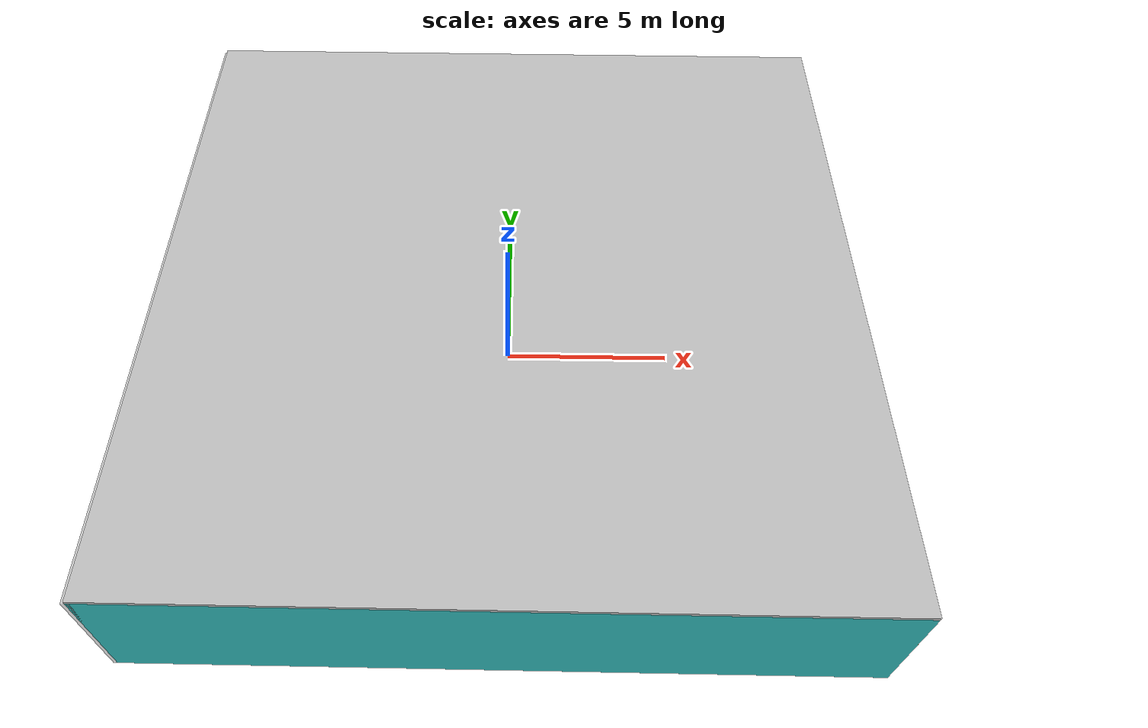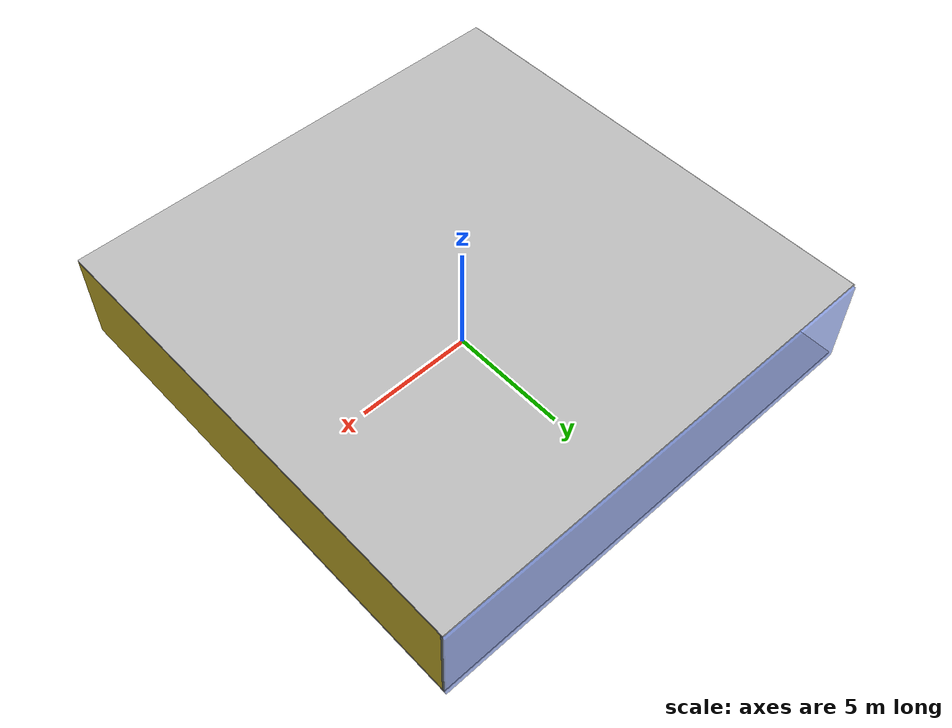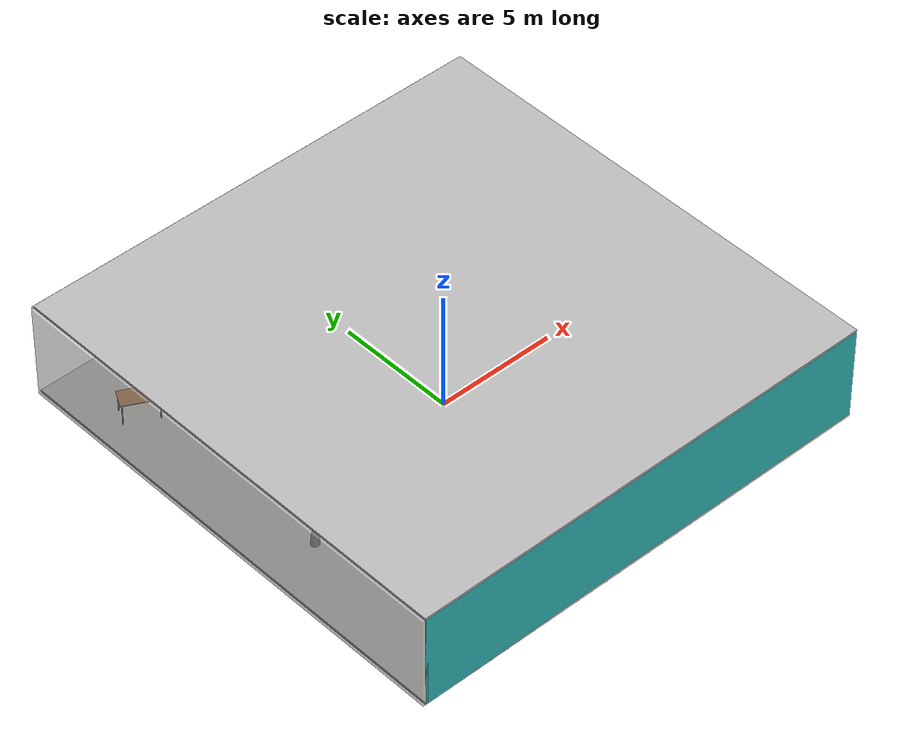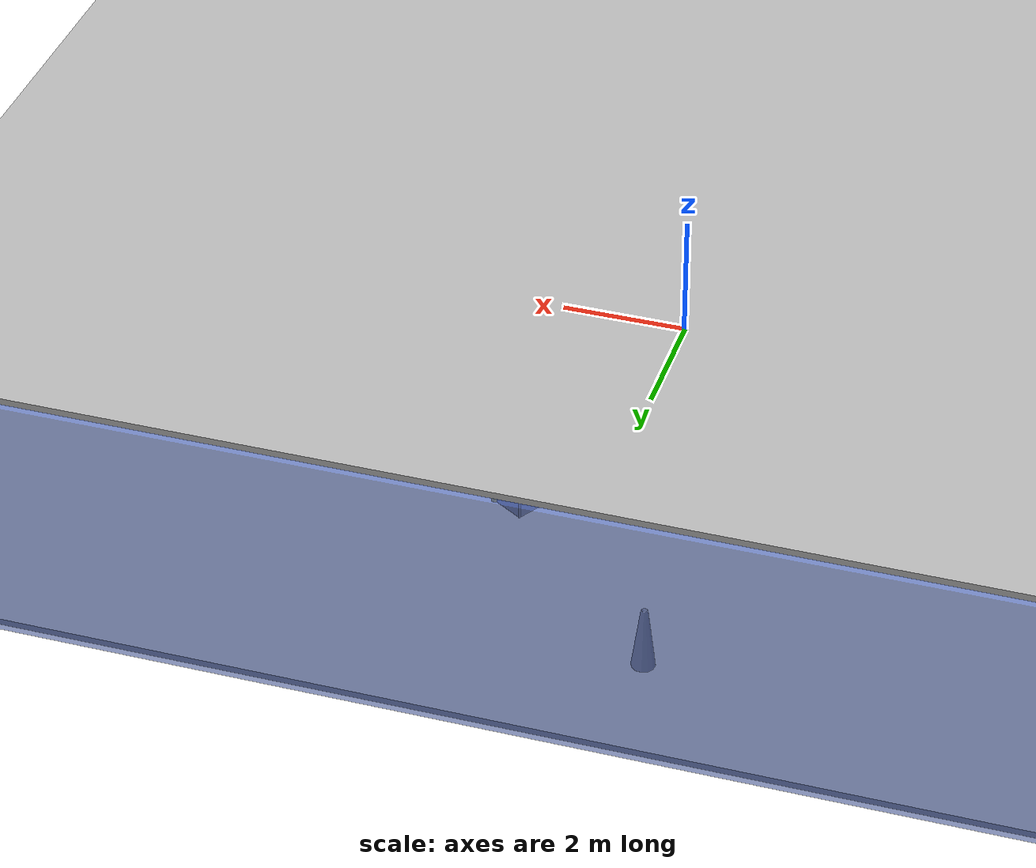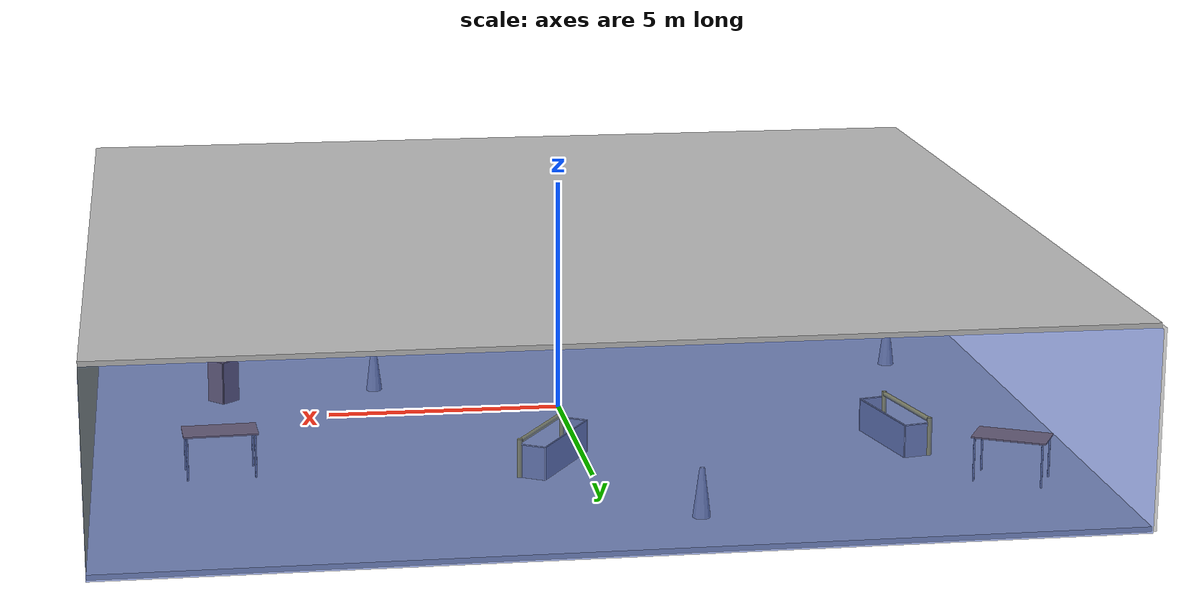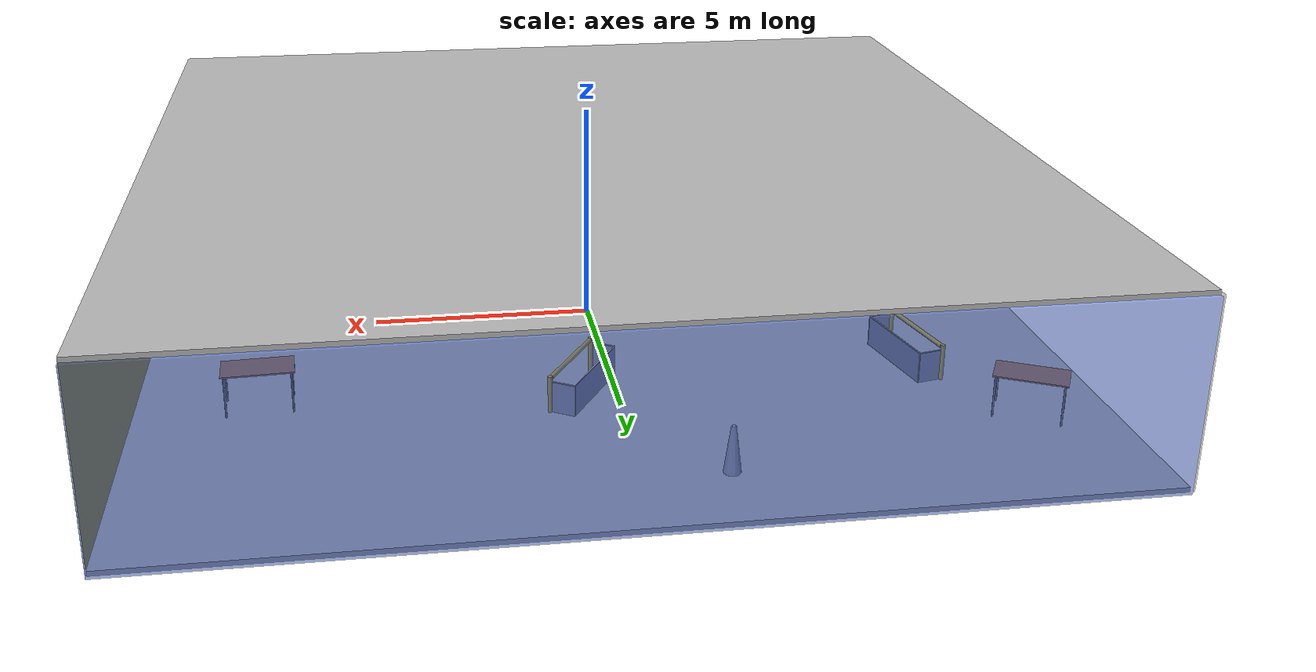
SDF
<sdf version="1.4">
 <world name="default">
  <physics type="ode">
   <max_step_size>0.001</max_step_size>
   <real_time_factor>1</real_time_factor>
   <real_time_update_rate>1000</real_time_update_rate>
   <gravity>0 0 -9.8</gravity>
  </physics>
  <scene><ambient>0.4 0.4 0.4 1</ambient><background>0.7 0.7 0.7 1</background><shadows>1</shadows></scene>
  <model name="Surrounding">
   <static>1</static>
   <link name="Ceiling">
    <collision name="Ceiling_Collision"><geometry><box><size>20 20 0.1</size></box></geometry></collision>
    <visual name="Ceiling_Visual">
     <geometry><box><size>20 20 0.1</size></box></geometry>
     <material>
      <script><uri>file://media/materials/scripts/gazebo.material</uri><name>Gazebo/LightOn</name></script>
     </material>
    </visual>
    <pose>0 0 4.05 0 0 0</pose>
   </link>
   <link name="Wall_South">
    <collision name="Wall_South_Collision">
     <geometry><box><size>20 0 4</size></box></geometry>
     <pose>0 0 2 0 -0 0</pose>
    </collision>
    <visual name="Wall_South_Visual">
     <pose>0 0 2 0 -0 0</pose>
     <geometry><box><size>20 0 4</size></box></geometry>
     <material>
      <script>
       <uri>file://media/materials/scripts/gazebo.material</uri>
       <name>Gazebo/TurquoiseGlowOutline</name>
      </script>
     </material>
    </visual>
    <velocity_decay><linear>0</linear><angular>0</angular></velocity_decay>
    <pose>0 -10 0 0 -0 0</pose>
   </link>
   <link name="Wall_East">
    <collision name="Wall_21_Collision">
     <geometry><box><size>20 0 4</size></box></geometry>
     <pose>0 0 2 0 -0 0</pose>
    </collision>
    <visual name="Wall_21_Visual">
     <pose>0 0 2 0 -0 0</pose>
     <geometry><box><size>20 0 4</size></box></geometry>
     <material>
      <script><uri>file://media/materials/scripts/gazebo.material</uri><name>Gazebo/ZincYellow</name></script>
     </material>
    </visual>
    <velocity_decay><linear>0</linear><angular>0</angular></velocity_decay>
    <pose>10 0 0 0 -0 1.5708</pose>
   </link>
   <link name="Wall_North">
    <collision name="Wall_22_Collision">
     <geometry><box><size>20 0.2 4</size></box></geometry>
     <pose>0 0 2 0 -0 0</pose>
    </collision>
    <visual name="Wall_22_Visual">
     <pose>0 0 2 0 -0 0</pose>
     <geometry><box><size>20 0.2 4</size></box></geometry>
     <material>
      <script><uri>file://media/materials/scripts/gazebo.material</uri><name>Gazebo/BlueTransparent</name></script>
     </material>
    </visual>
    <velocity_decay><linear>0</linear><angular>0</angular></velocity_decay>
    <pose>0 10 0 0 -0 0</pose>
   </link>
   <link name="Wall_West">
    <collision name="Wall_23_Collision">
     <geometry><box><size>20 0.2 4</size></box></geometry>
     <pose>0 0 2 0 -0 0</pose>
    </collision>
    <visual name="Wall_23_Visual">
     <pose>0 0 2 0 -0 0</pose>
     <geometry><box><size>20 0.2 4</size></box></geometry>
     <material>
      <script><uri>file://media/materials/scripts/gazebo.material</uri><name>Gazebo/GreyTransparent</name></script>
     </material>
    </visual>
    <velocity_decay><linear>0</linear><angular>0</angular></velocity_decay>
    <pose>-10 0 0 0 0 -1.5708</pose>
   </link>
   <link name="Ground_link">
    <collision name="collision">
     <pose>0 0 .05 0 -0 0</pose>
     <geometry><box><size>20 20 0.1</size></box></geometry>
    </collision>
    <visual name="visual">
     <pose>0 0 .05 0 -0 0</pose>
     <geometry><box><size>20 20 0.1</size></box></geometry>
     <material>
      <script><uri>file://media/materials/scripts/gazebo.material</uri><name>Gazebo/CeilingTiled</name></script>
     </material>
    </visual>
   </link>
   <static>1</static>
  </model>
  <spherical_coordinates>
   <surface_model>EARTH_WGS84</surface_model>
   <latitude_deg>0</latitude_deg>
   <longitude_deg>0</longitude_deg>
   <elevation>0</elevation>
   <heading_deg>0</heading_deg>
  </spherical_coordinates>
  <light name="lightball_0" type="diffuse">
   <diffuse>0.8 0.8 0.8 1</diffuse>
   <specular>0.2 0.2 0.2 1</specular>
   <attenuation>
    <range>100</range>
    <constant>0.7</constant>
    <linear>0.01</linear>
    <quadratic>0.001</quadratic>
   </attenuation>
   <direction>-0.5 0.1 -0.9</direction>
   <pose>-6.45516097471 5.00386587444 2.71757352402 0 0 0</pose>
  </light>
  <light name="lightball_1" type="diffuse">
   <diffuse>0.8 0.8 0.8 1</diffuse>
   <specular>0.2 0.2 0.2 1</specular>
   <attenuation>
    <range>100</range>
    <constant>0.7</constant>
    <linear>0.01</linear>
    <quadratic>0.001</quadratic>
   </attenuation>
   <direction>-0.5 0.1 -0.9</direction>
   <pose>-6.31602224151 1.95559199583 1.41138062615 0 0 0</pose>
  </light>
  <light name="lightball_2" type="diffuse">
   <diffuse>0.8 0.8 0.8 1</diffuse>
   <specular>0.2 0.2 0.2 1</specular>
   <attenuation>
    <range>100</range>
    <constant>0.7</constant>
    <linear>0.01</linear>
    <quadratic>0.001</quadratic>
   </attenuation>
   <direction>-0.5 0.1 -0.9</direction>
   <pose>-2.53765754021 3.63574848375 3.34653932263 0 0 0</pose>
  </light>
  <light name="lightball_3" type="diffuse">
   <diffuse>0.8 0.8 0.8 1</diffuse>
   <specular>0.2 0.2 0.2 1</specular>
   <attenuation>
    <range>100</range>
    <constant>0.7</constant>
    <linear>0.01</linear>
    <quadratic>0.001</quadratic>
   </attenuation>
   <direction>-0.5 0.1 -0.9</direction>
   <pose>-6.75405875621 8.99768849709 0.651241245944 0 0 0</pose>
  </light>
  <light name="lightball_4" type="diffuse">
   <diffuse>0.8 0.8 0.8 1</diffuse>
   <specular>0.2 0.2 0.2 1</specular>
   <attenuation>
    <range>100</range>
    <constant>0.7</constant>
    <linear>0.01</linear>
    <quadratic>0.001</quadratic>
   </attenuation>
   <direction>-0.5 0.1 -0.9</direction>
   <pose>-3.48056491756 8.64188424344 3.10314597576 0 0 0</pose>
  </light>
  <light name="lightball_5" type="diffuse">
   <diffuse>0.8 0.8 0.8 1</diffuse>
   <specular>0.2 0.2 0.2 1</specular>
   <attenuation>
    <range>100</range>
    <constant>0.7</constant>
    <linear>0.01</linear>
    <quadratic>0.001</quadratic>
   </attenuation>
   <direction>-0.5 0.1 -0.9</direction>
   <pose>7.16812836048 -5.49546618484 0.901031761133 0 0 0</pose>
  </light>
  <light name="lightball_6" type="diffuse">
   <diffuse>0.8 0.8 0.8 1</diffuse>
   <specular>0.2 0.2 0.2 1</specular>
   <attenuation>
    <range>100</range>
    <constant>0.7</constant>
    <linear>0.01</linear>
    <quadratic>0.001</quadratic>
   </attenuation>
   <direction>-0.5 0.1 -0.9</direction>
   <pose>2.70352927012 -4.56464451716 1.02860916844 0 0 0</pose>
  </light>
  <include>
   <uri>model://construction_cone</uri>
   <pose>-7.86981328265 -2.1323671341 0 0 0 0.413478136565</pose>
  </include>
  <include>
   <uri>model://robocup_3Dsim_goal</uri>
   <pose>-6.78440886101 3.88777880979 0 0 0 0.211107571291</pose>
  </include>
  <include><uri>model://table</uri><pose>-8.2087716282 6.71876111018 0 0 0 2.65493890018</pose></include>
  <include>
   <uri>model://robocup_3Dsim_goal</uri>
   <pose>-4.08697275224 -7.56469669515 0 0 0 0.965197394697</pose>
  </include>
  <include>
   <uri>model://construction_cone</uri>
   <pose>-1.6397116136 8.23173898539 0 0 0 2.76658781685</pose>
  </include>
  <include>
   <uri>model://robocup_3Dsim_goal</uri>
   <pose>0.957150812804 4.36233063779 0 0 0 2.59317646623</pose>
  </include>
  <include>
   <uri>model://construction_cone</uri>
   <pose>3.91326096509 -1.58616673863 0 0 0 2.26639588195</pose>
  </include>
  <include><uri>model://cabinet</uri><pose>7.23606493429 -1.18173762541 0 0 0 0.747100385915</pose></include>
  <include><uri>model://table</uri><pose>7.43189896888 4.1917402789 0 0 0 0.0481126845957</pose></include>
 </world>
</sdf>

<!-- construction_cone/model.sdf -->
<sdf version="1.5">
  <model name="Construction Cone">
    <link name="link">
      <collision name="collision">
        <geometry>
          <mesh>
            <scale>10 10 10</scale>
            <uri>file://isr-testbed/construction_cone/meshes/construction_cone.dae</uri>
          </mesh>
        </geometry>
      </collision>
      <visual name="visual">
        <geometry>
          <mesh>
            <scale>10 10 10</scale>
            <uri>file://isr-testbed/construction_cone/meshes/construction_cone.dae</uri>
          </mesh>
        </geometry>
      </visual>
    </link>
  </model>
</sdf>

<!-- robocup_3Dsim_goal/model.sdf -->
<sdf version="1.5">
  <model name="robocup_3d_goal">
    <static>true</static>
    <link name="left_post">
      <pose>0 1.05 0.45 0 0 0</pose>
      <collision name="collision">
        <geometry>
          <cylinder>
            <radius>0.05</radius>
            <length>0.9</length>
          </cylinder>
        </geometry>
      </collision>
      <visual name="visual">
        <geometry>
          <cylinder>
            <radius>0.05</radius>
            <length>0.9</length>
          </cylinder>
        </geometry>
        <material>
          <script>
            <uri>file://media/materials/scripts/gazebo.material</uri>
            <name>Gazebo/ZincYellow</name>
          </script>
        </material>
      </visual>
    </link>
    <link name="left_support_horiz_lower">
      <pose>0.30 1.05 0.01 0 0 0</pose>
      <collision name="collision">
        <geometry>
          <box>
            <size>0.50 0.02 0.02</size>
          </box>
        </geometry>
      </collision>
      <visual name="visual">
        <geometry>
          <box>
            <size>0.50 0.02 0.02</size>
          </box>
        </geometry>
        <material>
          <script>
            <uri>file://media/materials/scripts/gazebo.material</uri>
            <name>Gazebo/White</name>
          </script>
        </material>
      </visual>
    </link>
    <link name="left_support_horiz_upper">
      <pose>0.30 1.05 0.79 0 0 0</pose>
      <collision name="collision">
        <geometry>
          <box>
            <size>0.50 0.02 0.02</size>
          </box>
        </geometry>
      </collision>
      <visual name="visual">
        <geometry>
          <box>
            <size>0.50 0.02 0.02</size>
          </box>
        </geometry>
        <material>
          <script>
            <uri>file://media/materials/scripts/gazebo.material</uri>
            <name>Gazebo/White</name>
          </script>
        </material>
      </visual>
    </link>
    <link name="left_support_vertical">
      <pose>0.56 1.05 0.4 0 1.5708 0</pose>
      <collision name="collision">
        <geometry>
          <box>
            <size>0.80 0.02 0.02</size>
          </box>
        </geometry>
      </collision>
      <visual name="visual">
        <geometry>
          <box>
            <size>0.80 0.02 0.02</size>
          </box>
        </geometry>
        <material>
          <script>
            <uri>file://media/materials/scripts/gazebo.material</uri>
            <name>Gazebo/White</name>
          </script>
        </material>
      </visual>
    </link>
    <link name="right_support_horiz_lower">
      <pose>0.30 -1.05 0.01 0 0 0</pose>
      <collision name="collision">
        <geometry>
          <box>
            <size>0.50 0.02 0.02</size>
          </box>
        </geometry>
      </collision>
      <visual name="visual">
        <geometry>
          <box>
            <size>0.50 0.02 0.02</size>
          </box>
        </geometry>
        <material>
          <script>
            <uri>file://media/materials/scripts/gazebo.material</uri>
            <name>Gazebo/White</name>
          </script>
        </material>
      </visual>
    </link>
    <link name="right_support_horiz_upper">
      <pose>0.30 -1.05 0.79 0 0 0</pose>
      <collision name="collision">
        <geometry>
          <box>
            <size>0.50 0.02 0.02</size>
          </box>
        </geometry>
      </collision>
      <visual name="visual">
        <geometry>
          <box>
            <size>0.50 0.02 0.02</size>
          </box>
        </geometry>
        <material>
          <script>
            <uri>file://media/materials/scripts/gazebo.material</uri>
            <name>Gazebo/White</name>
          </script>
        </material>
      </visual>
    </link>
    <link name="right_support_vertical">
      <pose>0.56 -1.05 0.4 0 1.5708 0</pose>
      <collision name="collision">
        <geometry>
          <box>
            <size>0.80 0.02 0.02</size>
          </box>
        </geometry>
      </collision>
      <visual name="visual">
        <geometry>
          <box>
            <size>0.80 0.02 0.02</size>
          </box>
        </geometry>
        <material>
          <script>
            <uri>file://media/materials/scripts/gazebo.material</uri>
            <name>Gazebo/White</name>
          </script>
        </material>
      </visual>
    </link>
    <link name="center_support_horiz_lower">
      <pose>0.56 0 0.01 0 1.5708 0</pose>
      <collision name="collision">
        <geometry>
          <box>
            <size>0.02 2.08 0.02</size>
          </box>
        </geometry>
      </collision>
      <visual name="visual">
        <geometry>
          <box>
            <size>0.02 2.08 0.02</size>
          </box>
        </geometry>
        <material>
          <script>
            <uri>file://media/materials/scripts/gazebo.material</uri>
            <name>Gazebo/White</name>
          </script>
        </material>
      </visual>
    </link>
    <link name="center_support_horiz_upper">
      <pose>0.56 0 0.79 0 1.5708 0</pose>
      <collision name="collision">
        <geometry>
          <box>
            <size>0.02 2.08 0.02</size>
          </box>
        </geometry>
      </collision>
      <visual name="visual">
        <geometry>
          <box>
            <size>0.02 2.08 0.02</size>
          </box>
        </geometry>
        <material>
          <script>
            <uri>file://media/materials/scripts/gazebo.material</uri>
            <name>Gazebo/White</name>
          </script>
        </material>
      </visual>
    </link>
    <link name="right_post">
      <pose>0 -1.05 0.45 0 0 0</pose>
      <collision name="collision">
        <geometry>
          <cylinder>
            <radius>0.05</radius>
            <length>0.9</length>
          </cylinder>
        </geometry>
      </collision>
      <visual name="visual">
        <geometry>
          <cylinder>
            <radius>0.05</radius>
            <length>0.9</length>
          </cylinder>
        </geometry>
        <material>
          <script>
            <uri>file://media/materials/scripts/gazebo.material</uri>
            <name>Gazebo/ZincYellow</name>
          </script>
        </material>
      </visual>
    </link>
    <link name="crossbar">
      <pose>0 0 0.85 1.57 1.57 0</pose>
      <collision name="collision">
        <geometry>
          <cylinder>
            <radius>0.05</radius>
            <length>2.0</length>
          </cylinder>
        </geometry>
      </collision>
      <visual name="visual">
        <geometry>
          <cylinder>
            <radius>0.05</radius>
            <length>2.0</length>
          </cylinder>
        </geometry>
        <material>
          <script>
            <uri>file://media/materials/scripts/gazebo.material</uri>
            <name>Gazebo/ZincYellow</name>
          </script>
        </material>
      </visual>
    </link>
    <link name="center_net">
      <pose>0.56 0 0.40 0 0 0</pose>
      <collision name="collision">
        <geometry>
          <box>
            <size>0.01 2.1 0.80</size>
          </box>
        </geometry>
      </collision>
      <visual name="visual">
        <geometry>
          <box>
            <size>0.01 2.1 0.80</size>
          </box>
        </geometry>
        <material>
          <script>
            <uri>model://../model_source/models/robocup09_spl_field/materials/scripts/</uri>
            <uri>model://../model_source/models/robocup09_spl_field/materials/textures/</uri>
            <name>RoboCup/Net</name>
          </script>
        </material>
      </visual>
    </link>
    <link name="left_net">
      <pose>0.30 1.05 0.40 0 0 0</pose>
      <collision name="collision">
        <geometry>
          <box>
            <size>0.50 0.01 0.76</size>
          </box>
        </geometry>
      </collision>
      <visual name="visual">
        <geometry>
          <box>
            <size>0.50 0.01 0.76</size>
          </box>
        </geometry>
        <material>
          <script>
            <uri>model://../model_source/models/robocup09_spl_field/materials/scripts/</uri>
            <uri>model://../model_source/models/robocup09_spl_field/materials/textures/</uri>
            <name>RoboCup/Net</name>
          </script>
        </material>
      </visual>
    </link>
    <link name="right_net">
      <pose>0.30 -1.05 0.40 0 0 0</pose>
      <collision name="collision">
        <geometry>
          <box>
            <size>0.50 0.01 0.76</size>
          </box>
        </geometry>
      </collision>
      <visual name="visual">
        <geometry>
          <box>
            <size>0.50 0.01 0.76</size>
          </box>
        </geometry>
        <material>
          <script>
            <uri>model://../model_source/models/robocup09_spl_field/materials/scripts/</uri>
            <uri>model://../model_source/models/robocup09_spl_field/materials/textures/</uri>
            <name>RoboCup/Net</name>
          </script>
        </material>
      </visual>
    </link>
  </model>
</sdf>

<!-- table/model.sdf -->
<sdf version="1.5">
  <model name="table">
    <static>true</static>
    <link name="link">
      <collision name="surface">
        <pose>0 0 1.0 0 0 0</pose>
        <geometry>
          <box>
            <size>1.5 0.8 0.03</size>
          </box>
        </geometry>
        <surface>
          <friction>
            <ode>
              <mu>0.6</mu>
              <mu2>0.6</mu2>
            </ode>
          </friction>
        </surface>
      </collision>
      <visual name="visual1">
        <pose>0 0 1.0 0 0 0</pose>
        <geometry>
          <box>
            <size>1.5 0.8 0.03</size>
          </box>
        </geometry>
        <material>
          <script>
            <uri>model://media/materials/scripts/gazebo.material</uri>
            <name>Gazebo/Wood</name>
          </script>
        </material>
      </visual>
      <collision name="front_left_leg">
        <pose>0.68 0.38 0.5 0 0 0</pose>
        <geometry>
          <cylinder>
            <radius>0.02</radius>
            <length>1.0</length>
          </cylinder>
        </geometry>
      </collision>
      <visual name="front_left_leg">
        <pose>0.68 0.38 0.5 0 0 0</pose>
        <geometry>
          <cylinder>
            <radius>0.02</radius>
            <length>1.0</length>
          </cylinder>
        </geometry>
        <material>
          <script>
            <uri>model://media/materials/scripts/gazebo.material</uri>
            <name>Gazebo/Grey</name>
          </script>
        </material>
      </visual>
      <collision name="front_right_leg">
        <pose>0.68 -0.38 0.5 0 0 0</pose>
        <geometry>
          <cylinder>
            <radius>0.02</radius>
            <length>1.0</length>
          </cylinder>
        </geometry>
      </collision>
      <visual name="front_right_leg">
        <pose>0.68 -0.38 0.5 0 0 0</pose>
        <geometry>
          <cylinder>
            <radius>0.02</radius>
            <length>1.0</length>
          </cylinder>
        </geometry>
        <material>
          <script>
            <uri>model://media/materials/scripts/gazebo.material</uri>
            <name>Gazebo/Grey</name>
          </script>
        </material>
      </visual>
      <collision name="back_right_leg">
        <pose>-0.68 -0.38 0.5 0 0 0</pose>
        <geometry>
          <cylinder>
            <radius>0.02</radius>
            <length>1.0</length>
          </cylinder>
        </geometry>
      </collision>
      <visual name="back_right_leg">
        <pose>-0.68 -0.38 0.5 0 0 0</pose>
        <geometry>
          <cylinder>
            <radius>0.02</radius>
            <length>1.0</length>
          </cylinder>
        </geometry>
        <material>
          <script>
            <uri>model://media/materials/scripts/gazebo.material</uri>
            <name>Gazebo/Grey</name>
          </script>
        </material>
      </visual>
      <collision name="back_left_leg">
        <pose>-0.68 0.38 0.5 0 0 0</pose>
        <geometry>
          <cylinder>
            <radius>0.02</radius>
            <length>1.0</length>
          </cylinder>
        </geometry>
      </collision>
      <visual name="back_left_leg">
        <pose>-0.68 0.38 0.5 0 0 0</pose>
        <geometry>
          <cylinder>
            <radius>0.02</radius>
            <length>1.0</length>
          </cylinder>
        </geometry>
        <material>
          <script>
            <uri>model://media/materials/scripts/gazebo.material</uri>
            <name>Gazebo/Grey</name>
          </script>
        </material>
      </visual>
    </link>
  </model>
</sdf>

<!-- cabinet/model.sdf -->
<sdf version="1.5">
  <model name="cabinet">
    <static>true</static>
    <link name="cabinet_bottom_plate">
      <inertial>
        <pose>0 0 -1 0 0 0</pose>
        <inertia>
          <ixx>2.050000</ixx>
          <ixy>0</ixy>
          <ixz>0</ixz>
          <iyy>2.050000</iyy>
          <iyz>0</iyz>
          <izz>2.050000</izz>
        </inertia>
        <mass>25.000000</mass>
      </inertial>
      <collision name="cabinet_bottom_plate_geom">
        <pose>0 0 0.010000 0 0 0</pose>
        <geometry>
          <box>
            <size>0.450000 0.450000 0.020000</size>
          </box>
        </geometry>
      </collision>
      <visual name="cabinet_bottom_plate_geom_visual">
        <pose>0 0 0.010000 0 0 0</pose>
        <geometry>
          <box>
            <size>0.450000 0.450000 0.020000</size>
          </box>
        </geometry>
        <material>
          <script>
            <uri>model://media/materials/scripts/gazebo.material</uri>
            <name>Gazebo/Wood</name>
          </script>
        </material>
      </visual>
      <collision name="cabinet_bottom_plate_geom_cabinet_back_plate">
        <pose>0.235000 0 0.510000 0 0 0</pose>
        <geometry>
          <box>
            <size>0.020000 0.450000 1.020000</size>
          </box>
        </geometry>
      </collision>
      <visual name="cabinet_bottom_plate_geom_cabinet_back_plate_visual">
        <pose>0.235000 0 0.510000 0 0 0</pose>
        <geometry>
          <box>
            <size>0.020000 0.450000 1.020000</size>
          </box>
        </geometry>
        <material>
          <script>
            <uri>model://media/materials/scripts/gazebo.material</uri>
            <name>Gazebo/Wood</name>
          </script>
        </material>
      </visual>
      <collision name="cabinet_bottom_plate_geom_cabinet_left_plate">
        <pose>0 0.235000 0.510000 0 0 0</pose>
        <geometry>
          <box>
            <size>0.450000 0.020000 1.020000</size>
          </box>
        </geometry>
      </collision>
      <visual name="cabinet_bottom_plate_geom_cabinet_left_plate_visual">
        <pose>0 0.235000 0.510000 0 0 0</pose>
        <geometry>
          <box>
            <size>0.450000 0.020000 1.020000</size>
          </box>
        </geometry>
        <material>
          <script>
            <uri>model://media/materials/scripts/gazebo.material</uri>
            <name>Gazebo/Wood</name>
          </script>
        </material>
      </visual>
      <collision name="cabinet_bottom_plate_geom_cabinet_middle_plate">
        <pose>0 0 0.510000 0 0 0</pose>
        <geometry>
          <box>
            <size>0.450000 0.450000 0.020000</size>
          </box>
        </geometry>
      </collision>
      <visual name="cabinet_bottom_plate_geom_cabinet_middle_plate_visual">
        <pose>0 0 0.510000 0 0 0</pose>
        <geometry>
          <box>
            <size>0.450000 0.450000 0.020000</size>
          </box>
        </geometry>
        <material>
          <script>
            <uri>model://media/materials/scripts/gazebo.material</uri>
            <name>Gazebo/Wood</name>
          </script>
        </material>
      </visual>
      <collision name="cabinet_bottom_plate_geom_cabinet_right_plate">
        <pose>0 -0.235000 0.510000 0 0 0</pose>
        <geometry>
          <box>
            <size>0.450000 0.020000 1.020000</size>
          </box>
        </geometry>
      </collision>
      <visual name="cabinet_bottom_plate_geom_cabinet_right_plate_visual">
        <pose>0 -0.235000 0.510000 0 0 0</pose>
        <geometry>
          <box>
            <size>0.450000 0.020000 1.020000</size>
          </box>
        </geometry>
        <material>
          <script>
            <uri>model://media/materials/scripts/gazebo.material</uri>
            <name>Gazebo/Wood</name>
          </script>
        </material>
      </visual>
      <collision name="cabinet_bottom_plate_geom_cabinet_top_plate">
        <pose>0 0 1.010000 0 0 0</pose>
        <geometry>
          <box>
            <size>0.450000 0.450000 0.020000</size>
          </box>
        </geometry>
      </collision>
      <visual name="cabinet_bottom_plate_geom_cabinet_top_plate_visual">
        <pose>0 0 1.010000 0 0 0</pose>
        <geometry>
          <box>
            <size>0.450000 0.450000 0.020000</size>
          </box>
        </geometry>
        <material>
          <script>
            <uri>model://media/materials/scripts/gazebo.material</uri>
            <name>Gazebo/Wood</name>
          </script>
        </material>
      </visual>
    </link>
  </model>
</sdf>
